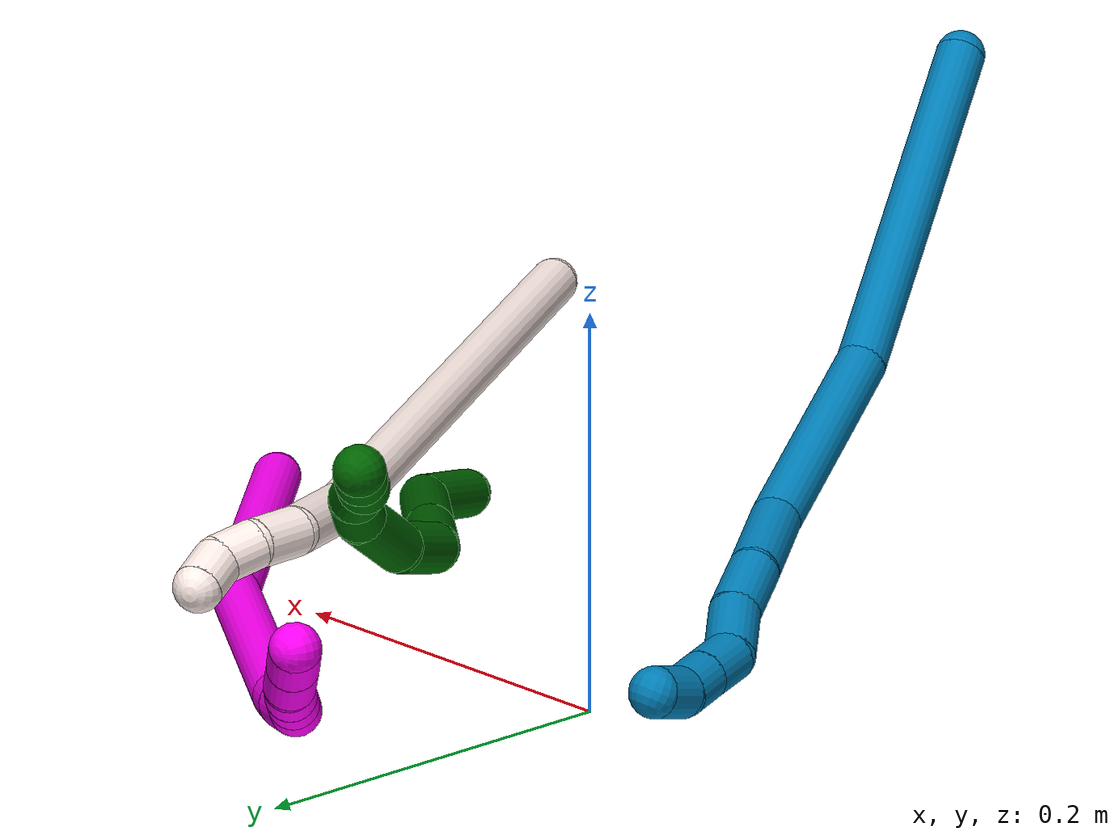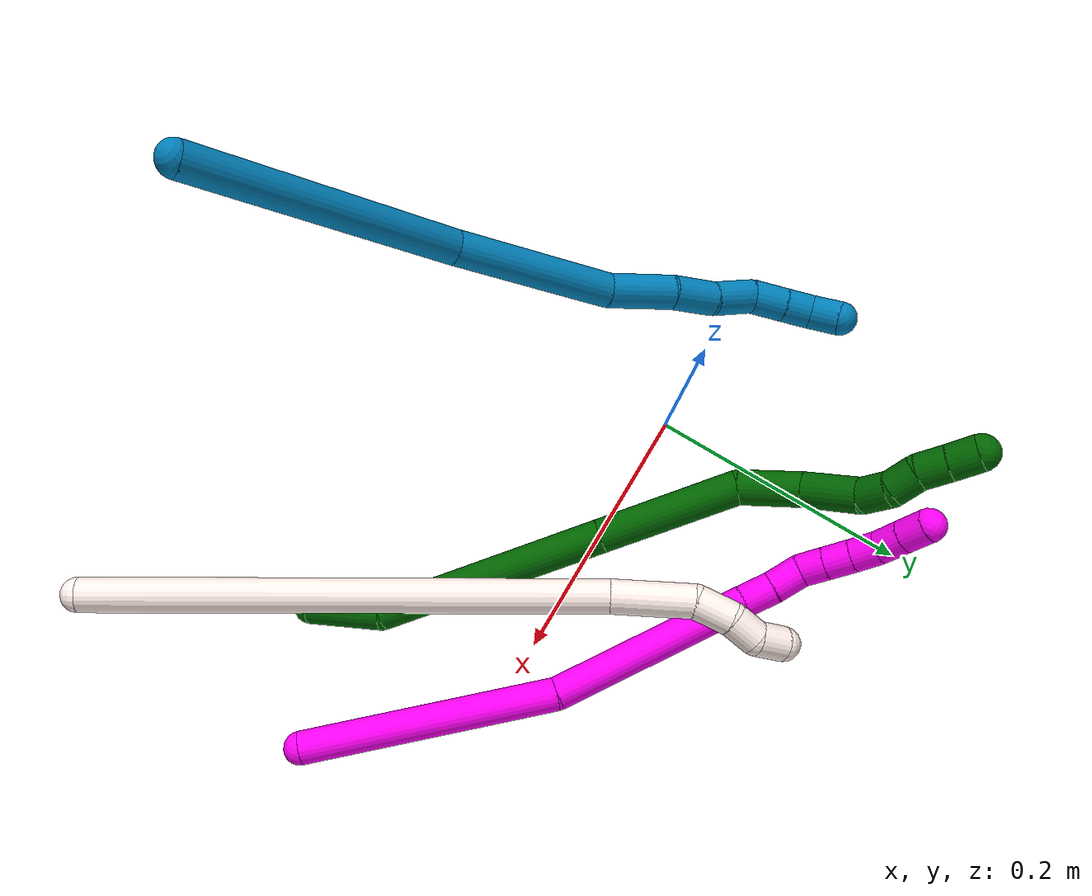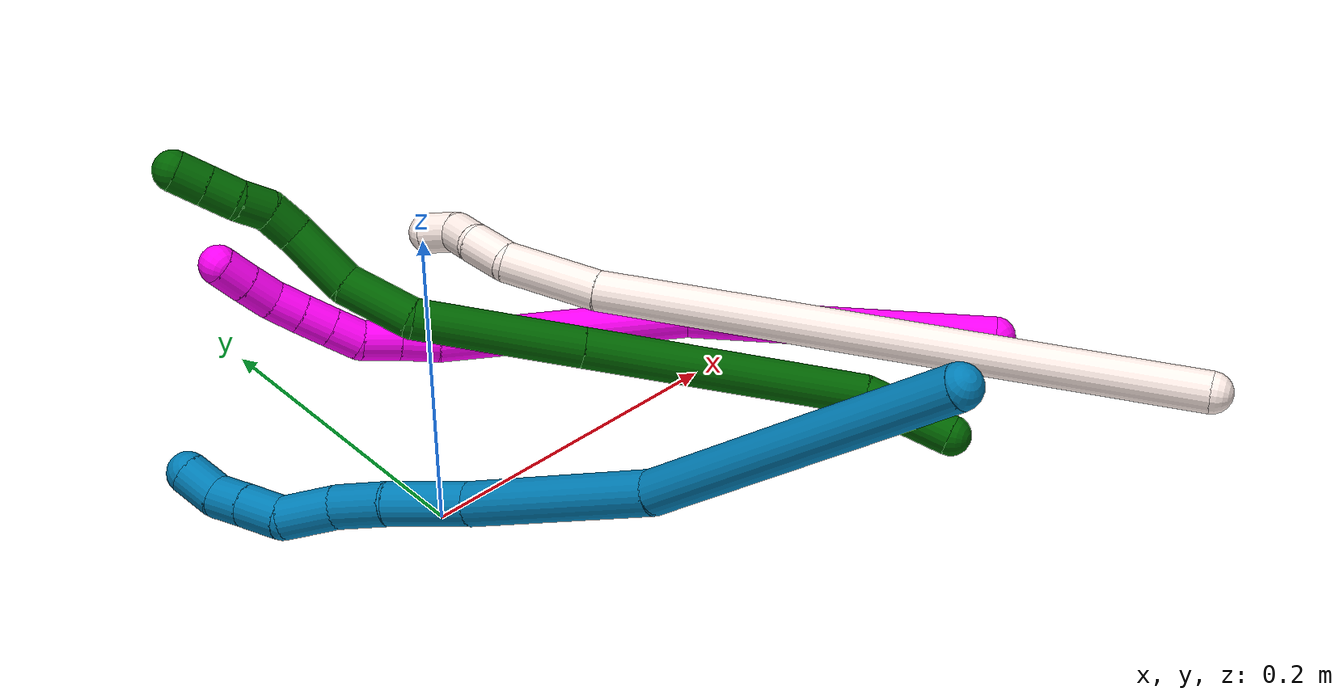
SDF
<sdf version="1.7">
 <world name="default">
  <model name="6">
   <static>0</static>
   <link name="6">
    <collision name="collision-cylinder-e_1_1_4">
     <pose>-0.007396 0.005011 0.027133 -0.182635 -0.261903 0.02412</pose>
     <geometry><cylinder><radius>0.0125</radius><length>0.057133</length></cylinder></geometry>
     <surface>
      <friction><ode><mu>1.16</mu><mu2>1.16</mu2><slip1>0</slip1><slip2>0</slip2></ode></friction>
      <contact><ode><kp>1e+06</kp><kd>1</kd><max_vel>0</max_vel><min_depth>0.001</min_depth></ode></contact>
     </surface>
    </collision>
    <visual name="visual-cylinder-e_1_1_4">
     <pose>-0.007396 0.005011 0.027133 -0.182635 -0.261903 0.02412</pose>
     <geometry><cylinder><radius>0.0125</radius><length>0.057133</length></cylinder></geometry>
     <material><ambient>0 0.392157 0.003922 1</ambient></material>
    </visual>
    <collision name="collision-cylinder-e_2_4_5">
     <pose>-0.025463 0.056854 0.125992 -0.578433 -0.123929 0.036919</pose>
     <geometry><cylinder><radius>0.0125</radius><length>0.172645</length></cylinder></geometry>
     <surface>
      <friction><ode><mu>1.16</mu><mu2>1.16</mu2><slip1>0</slip1><slip2>0</slip2></ode></friction>
      <contact><ode><kp>1e+06</kp><kd>1</kd><max_vel>0</max_vel><min_depth>0.001</min_depth></ode></contact>
     </surface>
    </collision>
    <visual name="visual-cylinder-e_2_4_5">
     <pose>-0.025463 0.056854 0.125992 -0.578433 -0.123929 0.036919</pose>
     <geometry><cylinder><radius>0.0125</radius><length>0.172645</length></cylinder></geometry>
     <material><ambient>0 0.392157 0.003922 1</ambient></material>
    </visual>
    <collision name="collision-cylinder-e_3_5_6">
     <pose>-0.042516 0.131431 0.240096 -0.579665 -0.125347 0.037427</pose>
     <geometry><cylinder><radius>0.0125</radius><length>0.102108</length></cylinder></geometry>
     <surface>
      <friction><ode><mu>1.16</mu><mu2>1.16</mu2><slip1>0</slip1><slip2>0</slip2></ode></friction>
      <contact><ode><kp>1e+06</kp><kd>1</kd><max_vel>0</max_vel><min_depth>0.001</min_depth></ode></contact>
     </surface>
    </collision>
    <visual name="visual-cylinder-e_3_5_6">
     <pose>-0.042516 0.131431 0.240096 -0.579665 -0.125347 0.037427</pose>
     <geometry><cylinder><radius>0.0125</radius><length>0.102108</length></cylinder></geometry>
     <material><ambient>0 0.392157 0.003922 1</ambient></material>
    </visual>
    <collision name="collision-cylinder-e_4_6_7">
     <pose>-0.055846 0.163662 0.303298 -0.212209 -0.31526 0.033854</pose>
     <geometry><cylinder><radius>0.0125</radius><length>0.04481</length></cylinder></geometry>
     <surface>
      <friction><ode><mu>1.16</mu><mu2>1.16</mu2><slip1>0</slip1><slip2>0</slip2></ode></friction>
      <contact><ode><kp>1e+06</kp><kd>1</kd><max_vel>0</max_vel><min_depth>0.001</min_depth></ode></contact>
     </surface>
    </collision>
    <visual name="visual-cylinder-e_4_6_7">
     <pose>-0.055846 0.163662 0.303298 -0.212209 -0.31526 0.033854</pose>
     <geometry><cylinder><radius>0.0125</radius><length>0.04481</length></cylinder></geometry>
     <material><ambient>0 0.392157 0.003922 1</ambient></material>
    </visual>
    <collision name="collision-cylinder-e_5_7_8">
     <pose>-0.075346 0.171189 0.340402 -0.18461 -0.648509 0.062207</pose>
     <geometry><cylinder><radius>0.0125</radius><length>0.041566</length></cylinder></geometry>
     <surface>
      <friction><ode><mu>1.16</mu><mu2>1.16</mu2><slip1>0</slip1><slip2>0</slip2></ode></friction>
      <contact><ode><kp>1e+06</kp><kd>1</kd><max_vel>0</max_vel><min_depth>0.001</min_depth></ode></contact>
     </surface>
    </collision>
    <visual name="visual-cylinder-e_5_7_8">
     <pose>-0.075346 0.171189 0.340402 -0.18461 -0.648509 0.062207</pose>
     <geometry><cylinder><radius>0.0125</radius><length>0.041566</length></cylinder></geometry>
     <material><ambient>0 0.392157 0.003922 1</ambient></material>
    </visual>
    <collision name="collision-cylinder-e_6_8_9">
     <pose>-0.094733 0.1789 0.363439 -0.604973 -0.694076 0.22478</pose>
     <geometry><cylinder><radius>0.0125</radius><length>0.021367</length></cylinder></geometry>
     <surface>
      <friction><ode><mu>1.16</mu><mu2>1.16</mu2><slip1>0</slip1><slip2>0</slip2></ode></friction>
      <contact><ode><kp>1e+06</kp><kd>1</kd><max_vel>0</max_vel><min_depth>0.001</min_depth></ode></contact>
     </surface>
    </collision>
    <visual name="visual-cylinder-e_6_8_9">
     <pose>-0.094733 0.1789 0.363439 -0.604973 -0.694076 0.22478</pose>
     <geometry><cylinder><radius>0.0125</radius><length>0.021367</length></cylinder></geometry>
     <material><ambient>0 0.392157 0.003922 1</ambient></material>
    </visual>
    <collision name="collision-cylinder-e_7_9_10">
     <pose>-0.10514 0.190873 0.376055 -0.894475 -0.364579 0.176376</pose>
     <geometry><cylinder><radius>0.0125</radius><length>0.020045</length></cylinder></geometry>
     <surface>
      <friction><ode><mu>1.16</mu><mu2>1.16</mu2><slip1>0</slip1><slip2>0</slip2></ode></friction>
      <contact><ode><kp>1e+06</kp><kd>1</kd><max_vel>0</max_vel><min_depth>0.001</min_depth></ode></contact>
     </surface>
    </collision>
    <visual name="visual-cylinder-e_7_9_10">
     <pose>-0.10514 0.190873 0.376055 -0.894475 -0.364579 0.176376</pose>
     <geometry><cylinder><radius>0.0125</radius><length>0.020045</length></cylinder></geometry>
     <material><ambient>0 0.392157 0.003922 1</ambient></material>
    </visual>
    <collision name="collision-cylinder-e_8_10_11">
     <pose>-0.112709 0.203401 0.389616 -0.596203 -0.405526 0.126169</pose>
     <geometry><cylinder><radius>0.0125</radius><length>0.020255</length></cylinder></geometry>
     <surface>
      <friction><ode><mu>1.16</mu><mu2>1.16</mu2><slip1>0</slip1><slip2>0</slip2></ode></friction>
      <contact><ode><kp>1e+06</kp><kd>1</kd><max_vel>0</max_vel><min_depth>0.001</min_depth></ode></contact>
     </surface>
    </collision>
    <visual name="visual-cylinder-e_8_10_11">
     <pose>-0.112709 0.203401 0.389616 -0.596203 -0.405526 0.126169</pose>
     <geometry><cylinder><radius>0.0125</radius><length>0.020255</length></cylinder></geometry>
     <material><ambient>0 0.392157 0.003922 1</ambient></material>
    </visual>
    <collision name="collision-cylinder-e_9_11_2">
     <pose>-0.120744 0.21399 0.404776 -0.623315 -0.414249 0.135188</pose>
     <geometry><cylinder><radius>0.0125</radius><length>0.020072</length></cylinder></geometry>
     <surface>
      <friction><ode><mu>1.16</mu><mu2>1.16</mu2><slip1>0</slip1><slip2>0</slip2></ode></friction>
      <contact><ode><kp>1e+06</kp><kd>1</kd><max_vel>0</max_vel><min_depth>0.001</min_depth></ode></contact>
     </surface>
    </collision>
    <visual name="visual-cylinder-e_9_11_2">
     <pose>-0.120744 0.21399 0.404776 -0.623315 -0.414249 0.135188</pose>
     <geometry><cylinder><radius>0.0125</radius><length>0.020072</length></cylinder></geometry>
     <material><ambient>0 0.392157 0.003922 1</ambient></material>
    </visual>
    <collision name="collision-sphere-2">
     <pose>-0.124784 0.219352 0.412236 0 -0 0</pose>
     <geometry><sphere><radius>0.0125</radius></sphere></geometry>
     <surface>
      <friction><ode><mu>1.16</mu><mu2>1.16</mu2><slip1>0</slip1><slip2>0</slip2></ode></friction>
      <contact><ode><kp>1e+06</kp><kd>1</kd><max_vel>0</max_vel><min_depth>0.001</min_depth></ode></contact>
     </surface>
    </collision>
    <visual name="visual-sphere-2">
     <pose>-0.124784 0.219352 0.412236 0 -0 0</pose>
     <geometry><sphere><radius>0.0125</radius></sphere></geometry>
     <material><ambient>0 0.392157 0.003922 1</ambient></material>
    </visual>
    <collision name="collision-sphere-11">
     <pose>-0.116705 0.208627 0.397317 0 -0 0</pose>
     <geometry><sphere><radius>0.0125</radius></sphere></geometry>
     <surface>
      <friction><ode><mu>1.16</mu><mu2>1.16</mu2><slip1>0</slip1><slip2>0</slip2></ode></friction>
      <contact><ode><kp>1e+06</kp><kd>1</kd><max_vel>0</max_vel><min_depth>0.001</min_depth></ode></contact>
     </surface>
    </collision>
    <visual name="visual-sphere-11">
     <pose>-0.116705 0.208627 0.397317 0 -0 0</pose>
     <geometry><sphere><radius>0.0125</radius></sphere></geometry>
     <material><ambient>0 0.392157 0.003922 1</ambient></material>
    </visual>
    <collision name="collision-sphere-10">
     <pose>-0.108714 0.198176 0.381916 0 -0 0</pose>
     <geometry><sphere><radius>0.0125</radius></sphere></geometry>
     <surface>
      <friction><ode><mu>1.16</mu><mu2>1.16</mu2><slip1>0</slip1><slip2>0</slip2></ode></friction>
      <contact><ode><kp>1e+06</kp><kd>1</kd><max_vel>0</max_vel><min_depth>0.001</min_depth></ode></contact>
     </surface>
    </collision>
    <visual name="visual-sphere-10">
     <pose>-0.108714 0.198176 0.381916 0 -0 0</pose>
     <geometry><sphere><radius>0.0125</radius></sphere></geometry>
     <material><ambient>0 0.392157 0.003922 1</ambient></material>
    </visual>
    <collision name="collision-sphere-9">
     <pose>-0.101567 0.183571 0.370194 0 -0 0</pose>
     <geometry><sphere><radius>0.0125</radius></sphere></geometry>
     <surface>
      <friction><ode><mu>1.16</mu><mu2>1.16</mu2><slip1>0</slip1><slip2>0</slip2></ode></friction>
      <contact><ode><kp>1e+06</kp><kd>1</kd><max_vel>0</max_vel><min_depth>0.001</min_depth></ode></contact>
     </surface>
    </collision>
    <visual name="visual-sphere-9">
     <pose>-0.101567 0.183571 0.370194 0 -0 0</pose>
     <geometry><sphere><radius>0.0125</radius></sphere></geometry>
     <material><ambient>0 0.392157 0.003922 1</ambient></material>
    </visual>
    <collision name="collision-sphere-4">
     <pose>-0.014793 0.010023 0.054266 0 -0 0</pose>
     <geometry><sphere><radius>0.0125</radius></sphere></geometry>
     <surface>
      <friction><ode><mu>1.16</mu><mu2>1.16</mu2><slip1>0</slip1><slip2>0</slip2></ode></friction>
      <contact><ode><kp>1e+06</kp><kd>1</kd><max_vel>0</max_vel><min_depth>0.001</min_depth></ode></contact>
     </surface>
    </collision>
    <visual name="visual-sphere-4">
     <pose>-0.014793 0.010023 0.054266 0 -0 0</pose>
     <geometry><sphere><radius>0.0125</radius></sphere></geometry>
     <material><ambient>0 0.392157 0.003922 1</ambient></material>
    </visual>
    <collision name="collision-sphere-1">
     <geometry><sphere><radius>0.0125</radius></sphere></geometry>
     <surface>
      <friction><ode><mu>1.16</mu><mu2>1.16</mu2><slip1>0</slip1><slip2>0</slip2></ode></friction>
      <contact><ode><kp>1e+06</kp><kd>1</kd><max_vel>0</max_vel><min_depth>0.001</min_depth></ode></contact>
     </surface>
    </collision>
    <visual name="visual-sphere-1">
     <geometry><sphere><radius>0.0125</radius></sphere></geometry>
     <material><ambient>0 0.392157 0.003922 1</ambient></material>
    </visual>
    <collision name="collision-sphere-8">
     <pose>-0.087899 0.17423 0.356685 0 -0 0</pose>
     <geometry><sphere><radius>0.0125</radius></sphere></geometry>
     <surface>
      <friction><ode><mu>1.16</mu><mu2>1.16</mu2><slip1>0</slip1><slip2>0</slip2></ode></friction>
      <contact><ode><kp>1e+06</kp><kd>1</kd><max_vel>0</max_vel><min_depth>0.001</min_depth></ode></contact>
     </surface>
    </collision>
    <visual name="visual-sphere-8">
     <pose>-0.087899 0.17423 0.356685 0 -0 0</pose>
     <geometry><sphere><radius>0.0125</radius></sphere></geometry>
     <material><ambient>0 0.392157 0.003922 1</ambient></material>
    </visual>
    <collision name="collision-sphere-5">
     <pose>-0.036134 0.103686 0.197717 0 -0 0</pose>
     <geometry><sphere><radius>0.0125</radius></sphere></geometry>
     <surface>
      <friction><ode><mu>1.16</mu><mu2>1.16</mu2><slip1>0</slip1><slip2>0</slip2></ode></friction>
      <contact><ode><kp>1e+06</kp><kd>1</kd><max_vel>0</max_vel><min_depth>0.001</min_depth></ode></contact>
     </surface>
    </collision>
    <visual name="visual-sphere-5">
     <pose>-0.036134 0.103686 0.197717 0 -0 0</pose>
     <geometry><sphere><radius>0.0125</radius></sphere></geometry>
     <material><ambient>0 0.392157 0.003922 1</ambient></material>
    </visual>
    <collision name="collision-sphere-6">
     <pose>-0.048899 0.159176 0.282475 0 -0 0</pose>
     <geometry><sphere><radius>0.0125</radius></sphere></geometry>
     <surface>
      <friction><ode><mu>1.16</mu><mu2>1.16</mu2><slip1>0</slip1><slip2>0</slip2></ode></friction>
      <contact><ode><kp>1e+06</kp><kd>1</kd><max_vel>0</max_vel><min_depth>0.001</min_depth></ode></contact>
     </surface>
    </collision>
    <visual name="visual-sphere-6">
     <pose>-0.048899 0.159176 0.282475 0 -0 0</pose>
     <geometry><sphere><radius>0.0125</radius></sphere></geometry>
     <material><ambient>0 0.392157 0.003922 1</ambient></material>
    </visual>
    <collision name="collision-sphere-7">
     <pose>-0.062793 0.168149 0.32412 0 -0 0</pose>
     <geometry><sphere><radius>0.0125</radius></sphere></geometry>
     <surface>
      <friction><ode><mu>1.16</mu><mu2>1.16</mu2><slip1>0</slip1><slip2>0</slip2></ode></friction>
      <contact><ode><kp>1e+06</kp><kd>1</kd><max_vel>0</max_vel><min_depth>0.001</min_depth></ode></contact>
     </surface>
    </collision>
    <visual name="visual-sphere-7">
     <pose>-0.062793 0.168149 0.32412 0 -0 0</pose>
     <geometry><sphere><radius>0.0125</radius></sphere></geometry>
     <material><ambient>0 0.392157 0.003922 1</ambient></material>
    </visual>
    <inertial>
     <pose>-0.047265 0.10807 0.213755 0 -0 0</pose>
     <mass>0.5</mass>
     <inertia>
      <ixx>0.000573</ixx>
      <ixy>0</ixy>
      <ixz>0</ixz>
      <iyy>0.000521</iyy>
      <iyz>0</iyz>
      <izz>-0.000184</izz>
     </inertia>
    </inertial>
   </link>
   <pose>0.262893 -0.157889 0.012699 1.77704 1.25973 -2.60157</pose>
  </model>
  <model name="9">
   <static>0</static>
   <link name="9">
    <collision name="collision-cylinder-e_1_1_4">
     <pose>-0.023833 0.043357 -0.085044 -2.67012 -0.244664 0.946148</pose>
     <geometry><cylinder><radius>0.0125</radius><length>0.196778</length></cylinder></geometry>
     <surface>
      <friction><ode><mu>1.16</mu><mu2>1.16</mu2><slip1>0</slip1><slip2>0</slip2></ode></friction>
      <contact><ode><kp>1e+06</kp><kd>1</kd><max_vel>0</max_vel><min_depth>0.001</min_depth></ode></contact>
     </surface>
    </collision>
    <visual name="visual-cylinder-e_1_1_4">
     <pose>-0.023833 0.043357 -0.085044 -2.67012 -0.244664 0.946148</pose>
     <geometry><cylinder><radius>0.0125</radius><length>0.196778</length></cylinder></geometry>
     <material><ambient>0 0.490196 0.709804 1</ambient></material>
    </visual>
    <collision name="collision-cylinder-e_2_4_5">
     <pose>-0.057135 0.123956 -0.215476 -2.45447 -0.159922 0.440703</pose>
     <geometry><cylinder><radius>0.0125</radius><length>0.118939</length></cylinder></geometry>
     <surface>
      <friction><ode><mu>1.16</mu><mu2>1.16</mu2><slip1>0</slip1><slip2>0</slip2></ode></friction>
      <contact><ode><kp>1e+06</kp><kd>1</kd><max_vel>0</max_vel><min_depth>0.001</min_depth></ode></contact>
     </surface>
    </collision>
    <visual name="visual-cylinder-e_2_4_5">
     <pose>-0.057135 0.123956 -0.215476 -2.45447 -0.159922 0.440703</pose>
     <geometry><cylinder><radius>0.0125</radius><length>0.118939</length></cylinder></geometry>
     <material><ambient>0 0.490196 0.709804 1</ambient></material>
    </visual>
    <collision name="collision-cylinder-e_3_5_6">
     <pose>-0.073802 0.179721 -0.275225 -2.2303 -0.297892 0.594296</pose>
     <geometry><cylinder><radius>0.0125</radius><length>0.049038</length></cylinder></geometry>
     <surface>
      <friction><ode><mu>1.16</mu><mu2>1.16</mu2><slip1>0</slip1><slip2>0</slip2></ode></friction>
      <contact><ode><kp>1e+06</kp><kd>1</kd><max_vel>0</max_vel><min_depth>0.001</min_depth></ode></contact>
     </surface>
    </collision>
    <visual name="visual-cylinder-e_3_5_6">
     <pose>-0.073802 0.179721 -0.275225 -2.2303 -0.297892 0.594296</pose>
     <geometry><cylinder><radius>0.0125</radius><length>0.049038</length></cylinder></geometry>
     <material><ambient>0 0.490196 0.709804 1</ambient></material>
    </visual>
    <collision name="collision-cylinder-e_4_6_7">
     <pose>-0.084908 0.209381 -0.301185 -2.37651 -0.238531 0.578927</pose>
     <geometry><cylinder><radius>0.0125</radius><length>0.033095</length></cylinder></geometry>
     <surface>
      <friction><ode><mu>1.16</mu><mu2>1.16</mu2><slip1>0</slip1><slip2>0</slip2></ode></friction>
      <contact><ode><kp>1e+06</kp><kd>1</kd><max_vel>0</max_vel><min_depth>0.001</min_depth></ode></contact>
     </surface>
    </collision>
    <visual name="visual-cylinder-e_4_6_7">
     <pose>-0.084908 0.209381 -0.301185 -2.37651 -0.238531 0.578927</pose>
     <geometry><cylinder><radius>0.0125</radius><length>0.033095</length></cylinder></geometry>
     <material><ambient>0 0.490196 0.709804 1</ambient></material>
    </visual>
    <collision name="collision-cylinder-e_5_7_8">
     <pose>-0.096039 0.2311 -0.32337 -2.3564 -0.449459 1.0088</pose>
     <geometry><cylinder><radius>0.0125</radius><length>0.033239</length></cylinder></geometry>
     <surface>
      <friction><ode><mu>1.16</mu><mu2>1.16</mu2><slip1>0</slip1><slip2>0</slip2></ode></friction>
      <contact><ode><kp>1e+06</kp><kd>1</kd><max_vel>0</max_vel><min_depth>0.001</min_depth></ode></contact>
     </surface>
    </collision>
    <visual name="visual-cylinder-e_5_7_8">
     <pose>-0.096039 0.2311 -0.32337 -2.3564 -0.449459 1.0088</pose>
     <geometry><cylinder><radius>0.0125</radius><length>0.033239</length></cylinder></geometry>
     <material><ambient>0 0.490196 0.709804 1</ambient></material>
    </visual>
    <collision name="collision-cylinder-e_6_8_9">
     <pose>-0.103209 0.252385 -0.341011 -2.15352 0.003984 -0.007397</pose>
     <geometry><cylinder><radius>0.0125</radius><length>0.025636</length></cylinder></geometry>
     <surface>
      <friction><ode><mu>1.16</mu><mu2>1.16</mu2><slip1>0</slip1><slip2>0</slip2></ode></friction>
      <contact><ode><kp>1e+06</kp><kd>1</kd><max_vel>0</max_vel><min_depth>0.001</min_depth></ode></contact>
     </surface>
    </collision>
    <visual name="visual-cylinder-e_6_8_9">
     <pose>-0.103209 0.252385 -0.341011 -2.15352 0.003984 -0.007397</pose>
     <geometry><cylinder><radius>0.0125</radius><length>0.025636</length></cylinder></geometry>
     <material><ambient>0 0.490196 0.709804 1</ambient></material>
    </visual>
    <collision name="collision-cylinder-e_7_9_10">
     <pose>-0.103233 0.271685 -0.353812 -2.16006 -0.007268 0.0136</pose>
     <geometry><cylinder><radius>0.0125</radius><length>0.020683</length></cylinder></geometry>
     <surface>
      <friction><ode><mu>1.16</mu><mu2>1.16</mu2><slip1>0</slip1><slip2>0</slip2></ode></friction>
      <contact><ode><kp>1e+06</kp><kd>1</kd><max_vel>0</max_vel><min_depth>0.001</min_depth></ode></contact>
     </surface>
    </collision>
    <visual name="visual-cylinder-e_7_9_10">
     <pose>-0.103233 0.271685 -0.353812 -2.16006 -0.007268 0.0136</pose>
     <geometry><cylinder><radius>0.0125</radius><length>0.020683</length></cylinder></geometry>
     <material><ambient>0 0.490196 0.709804 1</ambient></material>
    </visual>
    <collision name="collision-cylinder-e_8_10_2">
     <pose>-0.101443 0.291089 -0.362265 -1.81613 0.165893 -0.212238</pose>
     <geometry><cylinder><radius>0.0125</radius><length>0.022591</length></cylinder></geometry>
     <surface>
      <friction><ode><mu>1.16</mu><mu2>1.16</mu2><slip1>0</slip1><slip2>0</slip2></ode></friction>
      <contact><ode><kp>1e+06</kp><kd>1</kd><max_vel>0</max_vel><min_depth>0.001</min_depth></ode></contact>
     </surface>
    </collision>
    <visual name="visual-cylinder-e_8_10_2">
     <pose>-0.101443 0.291089 -0.362265 -1.81613 0.165893 -0.212238</pose>
     <geometry><cylinder><radius>0.0125</radius><length>0.022591</length></cylinder></geometry>
     <material><ambient>0 0.490196 0.709804 1</ambient></material>
    </visual>
    <collision name="collision-sphere-2">
     <pose>-0.099577 0.301896 -0.364971 0 -0 0</pose>
     <geometry><sphere><radius>0.0125</radius></sphere></geometry>
     <surface>
      <friction><ode><mu>1.16</mu><mu2>1.16</mu2><slip1>0</slip1><slip2>0</slip2></ode></friction>
      <contact><ode><kp>1e+06</kp><kd>1</kd><max_vel>0</max_vel><min_depth>0.001</min_depth></ode></contact>
     </surface>
    </collision>
    <visual name="visual-sphere-2">
     <pose>-0.099577 0.301896 -0.364971 0 -0 0</pose>
     <geometry><sphere><radius>0.0125</radius></sphere></geometry>
     <material><ambient>0 0.490196 0.709804 1</ambient></material>
    </visual>
    <collision name="collision-sphere-10">
     <pose>-0.103308 0.280283 -0.359559 0 -0 0</pose>
     <geometry><sphere><radius>0.0125</radius></sphere></geometry>
     <surface>
      <friction><ode><mu>1.16</mu><mu2>1.16</mu2><slip1>0</slip1><slip2>0</slip2></ode></friction>
      <contact><ode><kp>1e+06</kp><kd>1</kd><max_vel>0</max_vel><min_depth>0.001</min_depth></ode></contact>
     </surface>
    </collision>
    <visual name="visual-sphere-10">
     <pose>-0.103308 0.280283 -0.359559 0 -0 0</pose>
     <geometry><sphere><radius>0.0125</radius></sphere></geometry>
     <material><ambient>0 0.490196 0.709804 1</ambient></material>
    </visual>
    <collision name="collision-sphere-9">
     <pose>-0.103158 0.263088 -0.348065 0 -0 0</pose>
     <geometry><sphere><radius>0.0125</radius></sphere></geometry>
     <surface>
      <friction><ode><mu>1.16</mu><mu2>1.16</mu2><slip1>0</slip1><slip2>0</slip2></ode></friction>
      <contact><ode><kp>1e+06</kp><kd>1</kd><max_vel>0</max_vel><min_depth>0.001</min_depth></ode></contact>
     </surface>
    </collision>
    <visual name="visual-sphere-9">
     <pose>-0.103158 0.263088 -0.348065 0 -0 0</pose>
     <geometry><sphere><radius>0.0125</radius></sphere></geometry>
     <material><ambient>0 0.490196 0.709804 1</ambient></material>
    </visual>
    <collision name="collision-sphere-4">
     <pose>-0.047665 0.086715 -0.170088 0 -0 0</pose>
     <geometry><sphere><radius>0.0125</radius></sphere></geometry>
     <surface>
      <friction><ode><mu>1.16</mu><mu2>1.16</mu2><slip1>0</slip1><slip2>0</slip2></ode></friction>
      <contact><ode><kp>1e+06</kp><kd>1</kd><max_vel>0</max_vel><min_depth>0.001</min_depth></ode></contact>
     </surface>
    </collision>
    <visual name="visual-sphere-4">
     <pose>-0.047665 0.086715 -0.170088 0 -0 0</pose>
     <geometry><sphere><radius>0.0125</radius></sphere></geometry>
     <material><ambient>0 0.490196 0.709804 1</ambient></material>
    </visual>
    <collision name="collision-sphere-1">
     <geometry><sphere><radius>0.0125</radius></sphere></geometry>
     <surface>
      <friction><ode><mu>1.16</mu><mu2>1.16</mu2><slip1>0</slip1><slip2>0</slip2></ode></friction>
      <contact><ode><kp>1e+06</kp><kd>1</kd><max_vel>0</max_vel><min_depth>0.001</min_depth></ode></contact>
     </surface>
    </collision>
    <visual name="visual-sphere-1">
     <geometry><sphere><radius>0.0125</radius></sphere></geometry>
     <material><ambient>0 0.490196 0.709804 1</ambient></material>
    </visual>
    <collision name="collision-sphere-8">
     <pose>-0.10326 0.241683 -0.333957 0 -0 0</pose>
     <geometry><sphere><radius>0.0125</radius></sphere></geometry>
     <surface>
      <friction><ode><mu>1.16</mu><mu2>1.16</mu2><slip1>0</slip1><slip2>0</slip2></ode></friction>
      <contact><ode><kp>1e+06</kp><kd>1</kd><max_vel>0</max_vel><min_depth>0.001</min_depth></ode></contact>
     </surface>
    </collision>
    <visual name="visual-sphere-8">
     <pose>-0.10326 0.241683 -0.333957 0 -0 0</pose>
     <geometry><sphere><radius>0.0125</radius></sphere></geometry>
     <material><ambient>0 0.490196 0.709804 1</ambient></material>
    </visual>
    <collision name="collision-sphere-5">
     <pose>-0.066605 0.161197 -0.260864 0 -0 0</pose>
     <geometry><sphere><radius>0.0125</radius></sphere></geometry>
     <surface>
      <friction><ode><mu>1.16</mu><mu2>1.16</mu2><slip1>0</slip1><slip2>0</slip2></ode></friction>
      <contact><ode><kp>1e+06</kp><kd>1</kd><max_vel>0</max_vel><min_depth>0.001</min_depth></ode></contact>
     </surface>
    </collision>
    <visual name="visual-sphere-5">
     <pose>-0.066605 0.161197 -0.260864 0 -0 0</pose>
     <geometry><sphere><radius>0.0125</radius></sphere></geometry>
     <material><ambient>0 0.490196 0.709804 1</ambient></material>
    </visual>
    <collision name="collision-sphere-6">
     <pose>-0.080998 0.198245 -0.289587 0 -0 0</pose>
     <geometry><sphere><radius>0.0125</radius></sphere></geometry>
     <surface>
      <friction><ode><mu>1.16</mu><mu2>1.16</mu2><slip1>0</slip1><slip2>0</slip2></ode></friction>
      <contact><ode><kp>1e+06</kp><kd>1</kd><max_vel>0</max_vel><min_depth>0.001</min_depth></ode></contact>
     </surface>
    </collision>
    <visual name="visual-sphere-6">
     <pose>-0.080998 0.198245 -0.289587 0 -0 0</pose>
     <geometry><sphere><radius>0.0125</radius></sphere></geometry>
     <material><ambient>0 0.490196 0.709804 1</ambient></material>
    </visual>
    <collision name="collision-sphere-7">
     <pose>-0.088818 0.220518 -0.312784 0 -0 0</pose>
     <geometry><sphere><radius>0.0125</radius></sphere></geometry>
     <surface>
      <friction><ode><mu>1.16</mu><mu2>1.16</mu2><slip1>0</slip1><slip2>0</slip2></ode></friction>
      <contact><ode><kp>1e+06</kp><kd>1</kd><max_vel>0</max_vel><min_depth>0.001</min_depth></ode></contact>
     </surface>
    </collision>
    <visual name="visual-sphere-7">
     <pose>-0.088818 0.220518 -0.312784 0 -0 0</pose>
     <geometry><sphere><radius>0.0125</radius></sphere></geometry>
     <material><ambient>0 0.490196 0.709804 1</ambient></material>
    </visual>
    <inertial>
     <pose>-0.056359 0.13073 -0.201641 0 -0 0</pose>
     <mass>0.5</mass>
     <inertia>
      <ixx>0.001085</ixx>
      <ixy>0</ixy>
      <ixz>0</ixz>
      <iyy>0.00022</iyy>
      <iyz>0</iyz>
      <izz>-0.000237</izz>
     </inertia>
    </inertial>
   </link>
   <pose>0.077245 -0.324915 0.251367 0.496696 -0.195237 0.321536</pose>
  </model>
  <model name="10">
   <static>0</static>
   <link name="10">
    <collision name="collision-cylinder-e_1_1_4">
     <pose>0.045094 -0.043322 0.073605 0.531972 0.485783 0.134808</pose>
     <geometry><cylinder><radius>0.0125</radius><length>0.193163</length></cylinder></geometry>
     <surface>
      <friction><ode><mu>1.16</mu><mu2>1.16</mu2><slip1>0</slip1><slip2>0</slip2></ode></friction>
      <contact><ode><kp>1e+06</kp><kd>1</kd><max_vel>0</max_vel><min_depth>0.001</min_depth></ode></contact>
     </surface>
    </collision>
    <visual name="visual-cylinder-e_1_1_4">
     <pose>0.045094 -0.043322 0.073605 0.531972 0.485783 0.134808</pose>
     <geometry><cylinder><radius>0.0125</radius><length>0.193163</length></cylinder></geometry>
     <material><ambient>1 0 0.964706 1</ambient></material>
    </visual>
    <collision name="collision-cylinder-e_2_4_5">
     <pose>0.135393 -0.131338 0.192521 0.778557 0.617584 0.260233</pose>
     <geometry><cylinder><radius>0.0125</radius><length>0.15613</length></cylinder></geometry>
     <surface>
      <friction><ode><mu>1.16</mu><mu2>1.16</mu2><slip1>0</slip1><slip2>0</slip2></ode></friction>
      <contact><ode><kp>1e+06</kp><kd>1</kd><max_vel>0</max_vel><min_depth>0.001</min_depth></ode></contact>
     </surface>
    </collision>
    <visual name="visual-cylinder-e_2_4_5">
     <pose>0.135393 -0.131338 0.192521 0.778557 0.617584 0.260233</pose>
     <geometry><cylinder><radius>0.0125</radius><length>0.15613</length></cylinder></geometry>
     <material><ambient>1 0 0.964706 1</ambient></material>
    </visual>
    <collision name="collision-cylinder-e_3_5_6">
     <pose>0.189092 -0.181245 0.244963 0.631137 0.76584 0.261512</pose>
     <geometry><cylinder><radius>0.0125</radius><length>0.024509</length></cylinder></geometry>
     <surface>
      <friction><ode><mu>1.16</mu><mu2>1.16</mu2><slip1>0</slip1><slip2>0</slip2></ode></friction>
      <contact><ode><kp>1e+06</kp><kd>1</kd><max_vel>0</max_vel><min_depth>0.001</min_depth></ode></contact>
     </surface>
    </collision>
    <visual name="visual-cylinder-e_3_5_6">
     <pose>0.189092 -0.181245 0.244963 0.631137 0.76584 0.261512</pose>
     <geometry><cylinder><radius>0.0125</radius><length>0.024509</length></cylinder></geometry>
     <material><ambient>1 0 0.964706 1</ambient></material>
    </visual>
    <collision name="collision-cylinder-e_4_6_7">
     <pose>0.206591 -0.192174 0.258257 0.747868 0.819793 0.337751</pose>
     <geometry><cylinder><radius>0.0125</radius><length>0.024636</length></cylinder></geometry>
     <surface>
      <friction><ode><mu>1.16</mu><mu2>1.16</mu2><slip1>0</slip1><slip2>0</slip2></ode></friction>
      <contact><ode><kp>1e+06</kp><kd>1</kd><max_vel>0</max_vel><min_depth>0.001</min_depth></ode></contact>
     </surface>
    </collision>
    <visual name="visual-cylinder-e_4_6_7">
     <pose>0.206591 -0.192174 0.258257 0.747868 0.819793 0.337751</pose>
     <geometry><cylinder><radius>0.0125</radius><length>0.024636</length></cylinder></geometry>
     <material><ambient>1 0 0.964706 1</ambient></material>
    </visual>
    <collision name="collision-cylinder-e_5_7_8">
     <pose>0.223261 -0.198643 0.270925 0.115265 0.863827 0.053176</pose>
     <geometry><cylinder><radius>0.0125</radius><length>0.020164</length></cylinder></geometry>
     <surface>
      <friction><ode><mu>1.16</mu><mu2>1.16</mu2><slip1>0</slip1><slip2>0</slip2></ode></friction>
      <contact><ode><kp>1e+06</kp><kd>1</kd><max_vel>0</max_vel><min_depth>0.001</min_depth></ode></contact>
     </surface>
    </collision>
    <visual name="visual-cylinder-e_5_7_8">
     <pose>0.223261 -0.198643 0.270925 0.115265 0.863827 0.053176</pose>
     <geometry><cylinder><radius>0.0125</radius><length>0.020164</length></cylinder></geometry>
     <material><ambient>1 0 0.964706 1</ambient></material>
    </visual>
    <collision name="collision-cylinder-e_6_8_9">
     <pose>0.238778 -0.20005 0.283982 0.099362 0.872905 0.046378</pose>
     <geometry><cylinder><radius>0.0125</radius><length>0.020493</length></cylinder></geometry>
     <surface>
      <friction><ode><mu>1.16</mu><mu2>1.16</mu2><slip1>0</slip1><slip2>0</slip2></ode></friction>
      <contact><ode><kp>1e+06</kp><kd>1</kd><max_vel>0</max_vel><min_depth>0.001</min_depth></ode></contact>
     </surface>
    </collision>
    <visual name="visual-cylinder-e_6_8_9">
     <pose>0.238778 -0.20005 0.283982 0.099362 0.872905 0.046378</pose>
     <geometry><cylinder><radius>0.0125</radius><length>0.020493</length></cylinder></geometry>
     <material><ambient>1 0 0.964706 1</ambient></material>
    </visual>
    <collision name="collision-cylinder-e_7_9_10">
     <pose>0.254591 -0.201102 0.296599 0.06579 0.918775 0.032554</pose>
     <geometry><cylinder><radius>0.0125</radius><length>0.020034</length></cylinder></geometry>
     <surface>
      <friction><ode><mu>1.16</mu><mu2>1.16</mu2><slip1>0</slip1><slip2>0</slip2></ode></friction>
      <contact><ode><kp>1e+06</kp><kd>1</kd><max_vel>0</max_vel><min_depth>0.001</min_depth></ode></contact>
     </surface>
    </collision>
    <visual name="visual-cylinder-e_7_9_10">
     <pose>0.254591 -0.201102 0.296599 0.06579 0.918775 0.032554</pose>
     <geometry><cylinder><radius>0.0125</radius><length>0.020034</length></cylinder></geometry>
     <material><ambient>1 0 0.964706 1</ambient></material>
    </visual>
    <collision name="collision-cylinder-e_8_10_11">
     <pose>0.271762 -0.200504 0.307182 -0.21737 1.10526 -0.134386</pose>
     <geometry><cylinder><radius>0.0125</radius><length>0.020611</length></cylinder></geometry>
     <surface>
      <friction><ode><mu>1.16</mu><mu2>1.16</mu2><slip1>0</slip1><slip2>0</slip2></ode></friction>
      <contact><ode><kp>1e+06</kp><kd>1</kd><max_vel>0</max_vel><min_depth>0.001</min_depth></ode></contact>
     </surface>
    </collision>
    <visual name="visual-cylinder-e_8_10_11">
     <pose>0.271762 -0.200504 0.307182 -0.21737 1.10526 -0.134386</pose>
     <geometry><cylinder><radius>0.0125</radius><length>0.020611</length></cylinder></geometry>
     <material><ambient>1 0 0.964706 1</ambient></material>
    </visual>
    <collision name="collision-cylinder-e_9_11_2">
     <pose>0.289971 -0.198305 0.316188 -0.261637 1.09418 -0.159938</pose>
     <geometry><cylinder><radius>0.0125</radius><length>0.020259</length></cylinder></geometry>
     <surface>
      <friction><ode><mu>1.16</mu><mu2>1.16</mu2><slip1>0</slip1><slip2>0</slip2></ode></friction>
      <contact><ode><kp>1e+06</kp><kd>1</kd><max_vel>0</max_vel><min_depth>0.001</min_depth></ode></contact>
     </surface>
    </collision>
    <visual name="visual-cylinder-e_9_11_2">
     <pose>0.289971 -0.198305 0.316188 -0.261637 1.09418 -0.159938</pose>
     <geometry><cylinder><radius>0.0125</radius><length>0.020259</length></cylinder></geometry>
     <material><ambient>1 0 0.964706 1</ambient></material>
    </visual>
    <collision name="collision-sphere-2">
     <pose>0.298972 -0.197103 0.320677 0 -0 0</pose>
     <geometry><sphere><radius>0.0125</radius></sphere></geometry>
     <surface>
      <friction><ode><mu>1.16</mu><mu2>1.16</mu2><slip1>0</slip1><slip2>0</slip2></ode></friction>
      <contact><ode><kp>1e+06</kp><kd>1</kd><max_vel>0</max_vel><min_depth>0.001</min_depth></ode></contact>
     </surface>
    </collision>
    <visual name="visual-sphere-2">
     <pose>0.298972 -0.197103 0.320677 0 -0 0</pose>
     <geometry><sphere><radius>0.0125</radius></sphere></geometry>
     <material><ambient>1 0 0.964706 1</ambient></material>
    </visual>
    <collision name="collision-sphere-11">
     <pose>0.28097 -0.199507 0.311699 0 -0 0</pose>
     <geometry><sphere><radius>0.0125</radius></sphere></geometry>
     <surface>
      <friction><ode><mu>1.16</mu><mu2>1.16</mu2><slip1>0</slip1><slip2>0</slip2></ode></friction>
      <contact><ode><kp>1e+06</kp><kd>1</kd><max_vel>0</max_vel><min_depth>0.001</min_depth></ode></contact>
     </surface>
    </collision>
    <visual name="visual-sphere-11">
     <pose>0.28097 -0.199507 0.311699 0 -0 0</pose>
     <geometry><sphere><radius>0.0125</radius></sphere></geometry>
     <material><ambient>1 0 0.964706 1</ambient></material>
    </visual>
    <collision name="collision-sphere-10">
     <pose>0.262553 -0.201502 0.302664 0 -0 0</pose>
     <geometry><sphere><radius>0.0125</radius></sphere></geometry>
     <surface>
      <friction><ode><mu>1.16</mu><mu2>1.16</mu2><slip1>0</slip1><slip2>0</slip2></ode></friction>
      <contact><ode><kp>1e+06</kp><kd>1</kd><max_vel>0</max_vel><min_depth>0.001</min_depth></ode></contact>
     </surface>
    </collision>
    <visual name="visual-sphere-10">
     <pose>0.262553 -0.201502 0.302664 0 -0 0</pose>
     <geometry><sphere><radius>0.0125</radius></sphere></geometry>
     <material><ambient>1 0 0.964706 1</ambient></material>
    </visual>
    <collision name="collision-sphere-9">
     <pose>0.246629 -0.200703 0.290534 0 -0 0</pose>
     <geometry><sphere><radius>0.0125</radius></sphere></geometry>
     <surface>
      <friction><ode><mu>1.16</mu><mu2>1.16</mu2><slip1>0</slip1><slip2>0</slip2></ode></friction>
      <contact><ode><kp>1e+06</kp><kd>1</kd><max_vel>0</max_vel><min_depth>0.001</min_depth></ode></contact>
     </surface>
    </collision>
    <visual name="visual-sphere-9">
     <pose>0.246629 -0.200703 0.290534 0 -0 0</pose>
     <geometry><sphere><radius>0.0125</radius></sphere></geometry>
     <material><ambient>1 0 0.964706 1</ambient></material>
    </visual>
    <collision name="collision-sphere-4">
     <pose>0.090188 -0.086644 0.147211 0 -0 0</pose>
     <geometry><sphere><radius>0.0125</radius></sphere></geometry>
     <surface>
      <friction><ode><mu>1.16</mu><mu2>1.16</mu2><slip1>0</slip1><slip2>0</slip2></ode></friction>
      <contact><ode><kp>1e+06</kp><kd>1</kd><max_vel>0</max_vel><min_depth>0.001</min_depth></ode></contact>
     </surface>
    </collision>
    <visual name="visual-sphere-4">
     <pose>0.090188 -0.086644 0.147211 0 -0 0</pose>
     <geometry><sphere><radius>0.0125</radius></sphere></geometry>
     <material><ambient>1 0 0.964706 1</ambient></material>
    </visual>
    <collision name="collision-sphere-1">
     <geometry><sphere><radius>0.0125</radius></sphere></geometry>
     <surface>
      <friction><ode><mu>1.16</mu><mu2>1.16</mu2><slip1>0</slip1><slip2>0</slip2></ode></friction>
      <contact><ode><kp>1e+06</kp><kd>1</kd><max_vel>0</max_vel><min_depth>0.001</min_depth></ode></contact>
     </surface>
    </collision>
    <visual name="visual-sphere-1">
     <geometry><sphere><radius>0.0125</radius></sphere></geometry>
     <material><ambient>1 0 0.964706 1</ambient></material>
    </visual>
    <collision name="collision-sphere-8">
     <pose>0.230927 -0.199397 0.27743 0 -0 0</pose>
     <geometry><sphere><radius>0.0125</radius></sphere></geometry>
     <surface>
      <friction><ode><mu>1.16</mu><mu2>1.16</mu2><slip1>0</slip1><slip2>0</slip2></ode></friction>
      <contact><ode><kp>1e+06</kp><kd>1</kd><max_vel>0</max_vel><min_depth>0.001</min_depth></ode></contact>
     </surface>
    </collision>
    <visual name="visual-sphere-8">
     <pose>0.230927 -0.199397 0.27743 0 -0 0</pose>
     <geometry><sphere><radius>0.0125</radius></sphere></geometry>
     <material><ambient>1 0 0.964706 1</ambient></material>
    </visual>
    <collision name="collision-sphere-5">
     <pose>0.180598 -0.176033 0.237832 0 -0 0</pose>
     <geometry><sphere><radius>0.0125</radius></sphere></geometry>
     <surface>
      <friction><ode><mu>1.16</mu><mu2>1.16</mu2><slip1>0</slip1><slip2>0</slip2></ode></friction>
      <contact><ode><kp>1e+06</kp><kd>1</kd><max_vel>0</max_vel><min_depth>0.001</min_depth></ode></contact>
     </surface>
    </collision>
    <visual name="visual-sphere-5">
     <pose>0.180598 -0.176033 0.237832 0 -0 0</pose>
     <geometry><sphere><radius>0.0125</radius></sphere></geometry>
     <material><ambient>1 0 0.964706 1</ambient></material>
    </visual>
    <collision name="collision-sphere-6">
     <pose>0.197586 -0.186458 0.252095 0 -0 0</pose>
     <geometry><sphere><radius>0.0125</radius></sphere></geometry>
     <surface>
      <friction><ode><mu>1.16</mu><mu2>1.16</mu2><slip1>0</slip1><slip2>0</slip2></ode></friction>
      <contact><ode><kp>1e+06</kp><kd>1</kd><max_vel>0</max_vel><min_depth>0.001</min_depth></ode></contact>
     </surface>
    </collision>
    <visual name="visual-sphere-6">
     <pose>0.197586 -0.186458 0.252095 0 -0 0</pose>
     <geometry><sphere><radius>0.0125</radius></sphere></geometry>
     <material><ambient>1 0 0.964706 1</ambient></material>
    </visual>
    <collision name="collision-sphere-7">
     <pose>0.215595 -0.19789 0.26442 0 -0 0</pose>
     <geometry><sphere><radius>0.0125</radius></sphere></geometry>
     <surface>
      <friction><ode><mu>1.16</mu><mu2>1.16</mu2><slip1>0</slip1><slip2>0</slip2></ode></friction>
      <contact><ode><kp>1e+06</kp><kd>1</kd><max_vel>0</max_vel><min_depth>0.001</min_depth></ode></contact>
     </surface>
    </collision>
    <visual name="visual-sphere-7">
     <pose>0.215595 -0.19789 0.26442 0 -0 0</pose>
     <geometry><sphere><radius>0.0125</radius></sphere></geometry>
     <material><ambient>1 0 0.964706 1</ambient></material>
    </visual>
    <inertial>
     <pose>0.13109 -0.116669 0.173209 0 -0 0</pose>
     <mass>0.5</mass>
     <inertia><ixx>0.000959</ixx><ixy>0</ixy><ixz>0</ixz><iyy>0.000932</iyy><iyz>0</iyz><izz>4e-06</izz></inertia>
    </inertial>
   </link>
   <pose>0.354396 -0.108636 0.010952 1.56252 -0.77352 -3.09234</pose>
  </model>
  <model name="11">
   <static>0</static>
   <link name="11">
    <collision name="collision-cylinder-e_1_1_4">
     <pose>0.003697 -0.005059 -0.184563 3.11419 0.020018 1.26173</pose>
     <geometry><cylinder><radius>0.0125</radius><length>0.369338</length></cylinder></geometry>
     <surface>
      <friction><ode><mu>1.16</mu><mu2>1.16</mu2><slip1>0</slip1><slip2>0</slip2></ode></friction>
      <contact><ode><kp>1e+06</kp><kd>1</kd><max_vel>0</max_vel><min_depth>0.001</min_depth></ode></contact>
     </surface>
    </collision>
    <visual name="visual-cylinder-e_1_1_4">
     <pose>0.003697 -0.005059 -0.184563 3.11419 0.020018 1.26173</pose>
     <geometry><cylinder><radius>0.0125</radius><length>0.369338</length></cylinder></geometry>
     <material><ambient>1 0.933333 0.909804 1</ambient></material>
    </visual>
    <collision name="collision-cylinder-e_2_4_5">
     <pose>0.004711 -0.008458 -0.398809 -3.08571 -0.089969 2.03035</pose>
     <geometry><cylinder><radius>0.0125</radius><length>0.059702</length></cylinder></geometry>
     <surface>
      <friction><ode><mu>1.16</mu><mu2>1.16</mu2><slip1>0</slip1><slip2>0</slip2></ode></friction>
      <contact><ode><kp>1e+06</kp><kd>1</kd><max_vel>0</max_vel><min_depth>0.001</min_depth></ode></contact>
     </surface>
    </collision>
    <visual name="visual-cylinder-e_2_4_5">
     <pose>0.004711 -0.008458 -0.398809 -3.08571 -0.089969 2.03035</pose>
     <geometry><cylinder><radius>0.0125</radius><length>0.059702</length></cylinder></geometry>
     <material><ambient>1 0.933333 0.909804 1</ambient></material>
    </visual>
    <collision name="collision-cylinder-e_3_5_6">
     <pose>0.002615 -0.001061 -0.441053 -2.71319 0.042411 -0.194376</pose>
     <geometry><cylinder><radius>0.0125</radius><length>0.02764</length></cylinder></geometry>
     <surface>
      <friction><ode><mu>1.16</mu><mu2>1.16</mu2><slip1>0</slip1><slip2>0</slip2></ode></friction>
      <contact><ode><kp>1e+06</kp><kd>1</kd><max_vel>0</max_vel><min_depth>0.001</min_depth></ode></contact>
     </surface>
    </collision>
    <visual name="visual-cylinder-e_3_5_6">
     <pose>0.002615 -0.001061 -0.441053 -2.71319 0.042411 -0.194376</pose>
     <geometry><cylinder><radius>0.0125</radius><length>0.02764</length></cylinder></geometry>
     <material><ambient>1 0.933333 0.909804 1</ambient></material>
    </visual>
    <collision name="collision-cylinder-e_4_6_7">
     <pose>0.006142 0.010669 -0.46214 -2.52891 0.275019 -0.824837</pose>
     <geometry><cylinder><radius>0.0125</radius><length>0.02166</length></cylinder></geometry>
     <surface>
      <friction><ode><mu>1.16</mu><mu2>1.16</mu2><slip1>0</slip1><slip2>0</slip2></ode></friction>
      <contact><ode><kp>1e+06</kp><kd>1</kd><max_vel>0</max_vel><min_depth>0.001</min_depth></ode></contact>
     </surface>
    </collision>
    <visual name="visual-cylinder-e_4_6_7">
     <pose>0.006142 0.010669 -0.46214 -2.52891 0.275019 -0.824837</pose>
     <geometry><cylinder><radius>0.0125</radius><length>0.02166</length></cylinder></geometry>
     <material><ambient>1 0.933333 0.909804 1</ambient></material>
    </visual>
    <collision name="collision-cylinder-e_5_7_2">
     <pose>0.01292 0.017615 -0.48075 -3.04745 0.362179 -2.63795</pose>
     <geometry><cylinder><radius>0.0125</radius><length>0.02166</length></cylinder></geometry>
     <surface>
      <friction><ode><mu>1.16</mu><mu2>1.16</mu2><slip1>0</slip1><slip2>0</slip2></ode></friction>
      <contact><ode><kp>1e+06</kp><kd>1</kd><max_vel>0</max_vel><min_depth>0.001</min_depth></ode></contact>
     </surface>
    </collision>
    <visual name="visual-cylinder-e_5_7_2">
     <pose>0.01292 0.017615 -0.48075 -3.04745 0.362179 -2.63795</pose>
     <geometry><cylinder><radius>0.0125</radius><length>0.02166</length></cylinder></geometry>
     <material><ambient>1 0.933333 0.909804 1</ambient></material>
    </visual>
    <collision name="collision-sphere-2">
     <pose>0.016757 0.018567 -0.490832 0 -0 0</pose>
     <geometry><sphere><radius>0.0125</radius></sphere></geometry>
     <surface>
      <friction><ode><mu>1.16</mu><mu2>1.16</mu2><slip1>0</slip1><slip2>0</slip2></ode></friction>
      <contact><ode><kp>1e+06</kp><kd>1</kd><max_vel>0</max_vel><min_depth>0.001</min_depth></ode></contact>
     </surface>
    </collision>
    <visual name="visual-sphere-2">
     <pose>0.016757 0.018567 -0.490832 0 -0 0</pose>
     <geometry><sphere><radius>0.0125</radius></sphere></geometry>
     <material><ambient>1 0.933333 0.909804 1</ambient></material>
    </visual>
    <collision name="collision-sphere-7">
     <pose>0.009083 0.016663 -0.470667 0 -0 0</pose>
     <geometry><sphere><radius>0.0125</radius></sphere></geometry>
     <surface>
      <friction><ode><mu>1.16</mu><mu2>1.16</mu2><slip1>0</slip1><slip2>0</slip2></ode></friction>
      <contact><ode><kp>1e+06</kp><kd>1</kd><max_vel>0</max_vel><min_depth>0.001</min_depth></ode></contact>
     </surface>
    </collision>
    <visual name="visual-sphere-7">
     <pose>0.009083 0.016663 -0.470667 0 -0 0</pose>
     <geometry><sphere><radius>0.0125</radius></sphere></geometry>
     <material><ambient>1 0.933333 0.909804 1</ambient></material>
    </visual>
    <collision name="collision-sphere-6">
     <pose>0.003201 0.004675 -0.453613 0 -0 0</pose>
     <geometry><sphere><radius>0.0125</radius></sphere></geometry>
     <surface>
      <friction><ode><mu>1.16</mu><mu2>1.16</mu2><slip1>0</slip1><slip2>0</slip2></ode></friction>
      <contact><ode><kp>1e+06</kp><kd>1</kd><max_vel>0</max_vel><min_depth>0.001</min_depth></ode></contact>
     </surface>
    </collision>
    <visual name="visual-sphere-6">
     <pose>0.003201 0.004675 -0.453613 0 -0 0</pose>
     <geometry><sphere><radius>0.0125</radius></sphere></geometry>
     <material><ambient>1 0.933333 0.909804 1</ambient></material>
    </visual>
    <collision name="collision-sphere-5">
     <pose>0.002029 -0.006797 -0.428493 0 -0 0</pose>
     <geometry><sphere><radius>0.0125</radius></sphere></geometry>
     <surface>
      <friction><ode><mu>1.16</mu><mu2>1.16</mu2><slip1>0</slip1><slip2>0</slip2></ode></friction>
      <contact><ode><kp>1e+06</kp><kd>1</kd><max_vel>0</max_vel><min_depth>0.001</min_depth></ode></contact>
     </surface>
    </collision>
    <visual name="visual-sphere-5">
     <pose>0.002029 -0.006797 -0.428493 0 -0 0</pose>
     <geometry><sphere><radius>0.0125</radius></sphere></geometry>
     <material><ambient>1 0.933333 0.909804 1</ambient></material>
    </visual>
    <collision name="collision-sphere-1">
     <geometry><sphere><radius>0.0125</radius></sphere></geometry>
     <surface>
      <friction><ode><mu>1.16</mu><mu2>1.16</mu2><slip1>0</slip1><slip2>0</slip2></ode></friction>
      <contact><ode><kp>1e+06</kp><kd>1</kd><max_vel>0</max_vel><min_depth>0.001</min_depth></ode></contact>
     </surface>
    </collision>
    <visual name="visual-sphere-1">
     <geometry><sphere><radius>0.0125</radius></sphere></geometry>
     <material><ambient>1 0.933333 0.909804 1</ambient></material>
    </visual>
    <collision name="collision-sphere-4">
     <pose>0.007393 -0.010118 -0.369125 0 -0 0</pose>
     <geometry><sphere><radius>0.0125</radius></sphere></geometry>
     <surface>
      <friction><ode><mu>1.16</mu><mu2>1.16</mu2><slip1>0</slip1><slip2>0</slip2></ode></friction>
      <contact><ode><kp>1e+06</kp><kd>1</kd><max_vel>0</max_vel><min_depth>0.001</min_depth></ode></contact>
     </surface>
    </collision>
    <visual name="visual-sphere-4">
     <pose>0.007393 -0.010118 -0.369125 0 -0 0</pose>
     <geometry><sphere><radius>0.0125</radius></sphere></geometry>
     <material><ambient>1 0.933333 0.909804 1</ambient></material>
    </visual>
    <inertial>
     <pose>0.004263 -0.00358 -0.249179 0 -0 0</pose>
     <mass>0.5</mass>
     <inertia><ixx>0.005304</ixx><ixy>0</ixy><ixz>0</ixz><iyy>0.002758</iyy><iyz>0</iyz><izz>-1e-05</izz></inertia>
    </inertial>
   </link>
   <pose>0.337729 -0.287375 0.082986 1.58014 1.43999 0.526326</pose>
  </model>
 </world>
</sdf>
